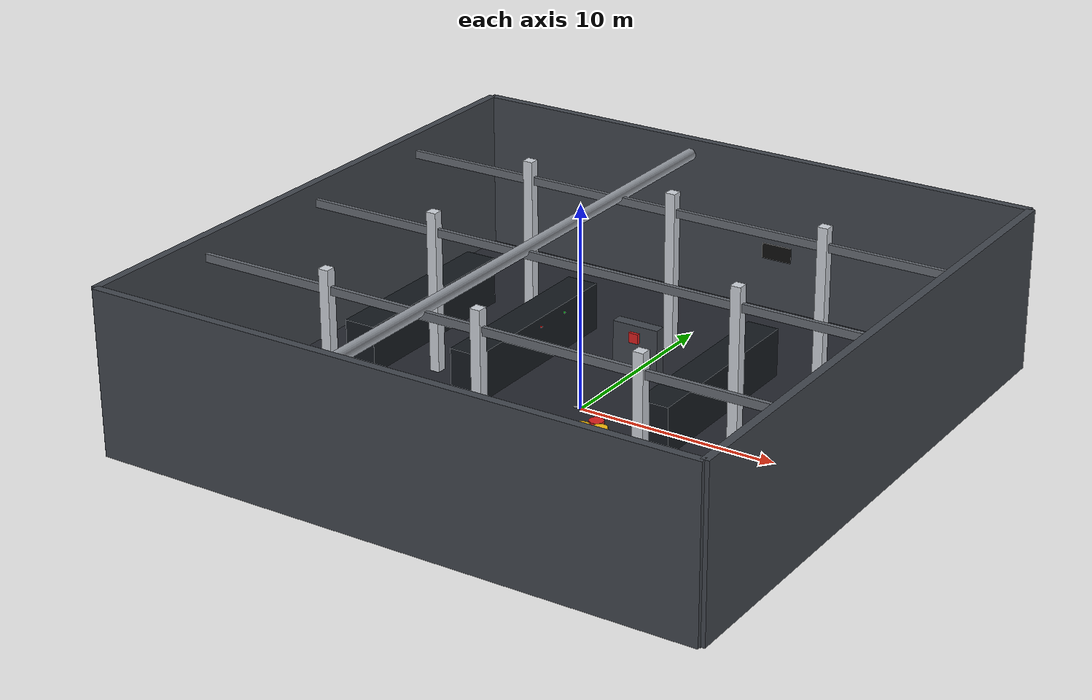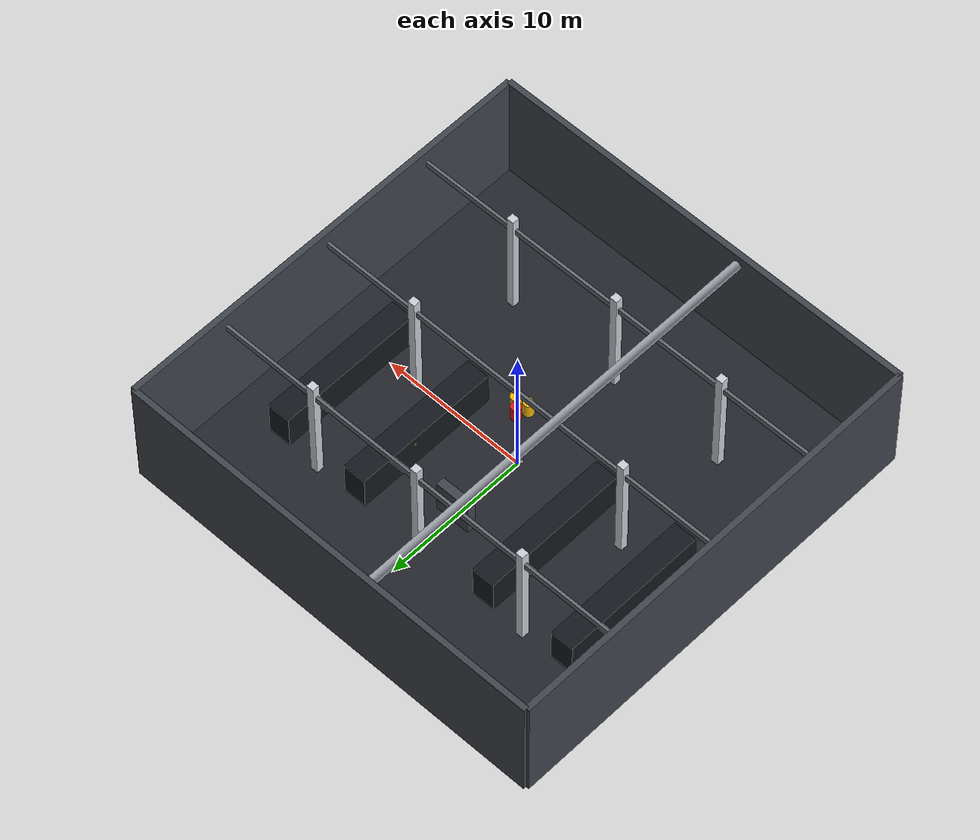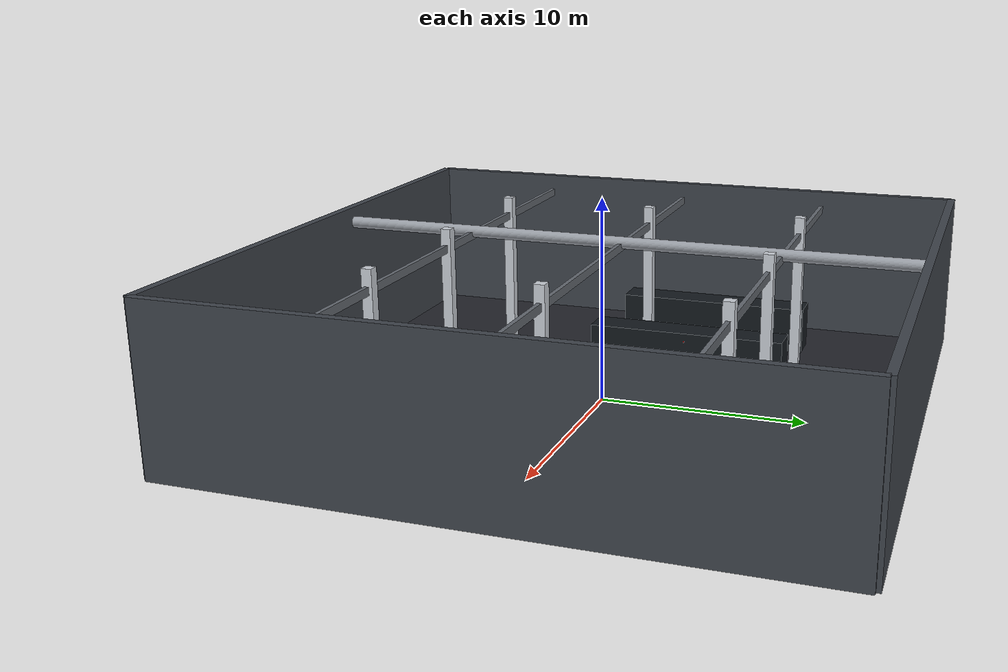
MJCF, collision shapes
<mujoco model="industrial_server_datacenter_warehouse">
  <!-- 1. Include the drone at the top -->
  <include file="x2.xml"/>
  <option timestep="0.005" gravity="0 0 -9.81"/>

  <asset>
    <!-- Darker industrial atmosphere with cool LED accent colors -->
    <texture type="skybox" builtin="gradient" rgb1="0.02 0.03 0.05" rgb2="0.01 0.01 0.02" width="512" height="512"/>
    <texture type="2d" name="floor_grid" builtin="checker" rgb1="0.10 0.11 0.13" rgb2="0.18 0.19 0.22" width="512" height="512"/>
    <material name="floor_mat" texture="floor_grid" texrepeat="20 20" reflectance="0.15"/>
    <material name="wall_mat" rgba="0.25 0.27 0.30 1"/>
    <material name="ceiling_mat" rgba="0.15 0.16 0.18 1"/>
    <material name="pillar_mat" rgba="0.80 0.82 0.85 1"/>
    <material name="server_rack_mat" rgba="0.08 0.10 0.12 1" shininess="0.8"/>
    <material name="steel_truss" rgba="0.40 0.42 0.45 1" shininess="0.5"/>
    <material name="overhead_duct" rgba="0.60 0.62 0.65 1"/>

    <!-- Inspection Hazards, Lights & Accents -->
    <material name="yellow_barrel_mat" rgba="0.95 0.72 0.05 1"/>
    <material name="red_hazard_mat" rgba="0.85 0.12 0.12 1"/>
    <material name="led_green" rgba="0.1 1.0 0.2 1" emission="0.9"/>
    <material name="led_red" rgba="1.0 0.1 0.1 1" emission="0.9"/>
    <material name="crack_mat" rgba="0.05 0.05 0.05 1"/>
  </asset>

  <worldbody>
    <!-- Overhead Industrial / Server Room Lighting -->
    <light pos="0 0 7.5" dir="0 0 -1" diffuse="0.75 0.78 0.85" specular="0.3 0.3 0.3"/>
    <light pos="-6 0 7.5" dir="0 0 -1" diffuse="0.5 0.5 0.5" specular="0.1 0.1 0.1"/>
    <light pos="6 0 7.5" dir="0 0 -1" diffuse="0.5 0.5 0.5" specular="0.1 0.1 0.1"/>

    <!-- Dynamic Hazard Light (Flickering Arc/Spark) -->
    <light name="spark_flash" pos="0 5 2.2" diffuse="1.0 0.3 0.1" specular="1 1 1"/>

    <!-- Floor (15x15m bounds) -->
    <geom name="floor" type="plane" size="15 15 0.1" material="floor_mat"/>

    <!-- 1. Enclosed Room: 4 Outer Walls -->
    <geom name="wall_north" type="box" size="15 0.2 4" pos="0 15 4" material="wall_mat"/>
    <geom name="wall_south" type="box" size="15 0.2 4" pos="0 -15 4" material="wall_mat"/>
    <geom name="wall_east" type="box" size="0.2 15 4" pos="15 0 4" material="wall_mat"/>
    <geom name="wall_west" type="box" size="0.2 15 4" pos="-15 0 4" material="wall_mat"/>

    <!-- Wall Crack Decal -->
    <geom name="wall_crack_north" type="box" size="0.8 0.01 0.4" pos="2 14.8 3" material="crack_mat"/>

    <!-- 2. Ceiling / Roof -->
    <geom name="roof" type="plane" size="15 15 0.1" pos="0 0 8" quat="0 1 0 0" material="ceiling_mat"/>

    <!-- 3. Grid of Vertical Support Pillars -->
    <geom name="pillar_a1" type="box" size="0.25 0.25 4" pos="-8 8 4" material="pillar_mat"/>
    <geom name="pillar_a2" type="box" size="0.25 0.25 4" pos="-8 0 4" material="pillar_mat"/>
    <geom name="pillar_a3" type="box" size="0.25 0.25 4" pos="-8 -8 4" material="pillar_mat"/>
    <geom name="pillar_b1" type="box" size="0.25 0.25 4" pos="0 8 4" material="pillar_mat"/>
    <geom name="pillar_b2" type="box" size="0.25 0.25 4" pos="0 -8 4" material="pillar_mat"/>
    <geom name="pillar_c1" type="box" size="0.25 0.25 4" pos="8 8 4" material="pillar_mat"/>
    <geom name="pillar_c2" type="box" size="0.25 0.25 4" pos="8 0 4" material="pillar_mat"/>
    <geom name="pillar_c3" type="box" size="0.25 0.25 4" pos="8 -8 4" material="pillar_mat"/>

    <!-- 4. Server Rack Aisles with Status LEDs -->
    <geom name="server_row_l1" type="box" size="0.8 5.0 1.2" pos="-11 3 1.2" material="server_rack_mat"/>
    <geom name="server_row_l2" type="box" size="0.8 5.0 1.2" pos="-5 3 1.2" material="server_rack_mat"/>
    <geom name="rack_led_1" type="sphere" size="0.05" pos="-4.1 5.0 2.0" material="led_green"/>
    <geom name="rack_led_2" type="sphere" size="0.05" pos="-4.1 3.0 2.0" material="led_red"/>

    <geom name="server_row_r1" type="box" size="0.8 5.0 1.2" pos="5 3 1.2" material="server_rack_mat"/>
    <geom name="server_row_r2" type="box" size="0.8 5.0 1.2" pos="11 3 1.2" material="server_rack_mat"/>
    <geom name="rack_led_3" type="sphere" size="0.05" pos="4.1 4.0 2.0" material="led_green"/>

    <!-- 5. Overhead Trusses & Cable Trays -->
    <geom name="truss_main_1" type="box" size="15 0.1 0.2" pos="0 8 7.0" material="steel_truss"/>
    <geom name="truss_main_2" type="box" size="15 0.1 0.2" pos="0 0 7.0" material="steel_truss"/>
    <geom name="truss_main_3" type="box" size="15 0.1 0.2" pos="0 -8 7.0" material="steel_truss"/>
    <geom name="air_duct_1" type="cylinder" size="0.3 15" pos="-3 0 7.2" quat="0.707 0.707 0 0" material="overhead_duct"/>

    <!-- 6. Target Inspection Hazard Area -->
    <body name="target_structure" pos="0 5 0">
      <geom name="structure_base" type="box" size="1.2 0.3 1.2" pos="0 0 1.2" material="wall_mat"/>
      <geom name="leak_hazard_box" type="box" size="0.25 0.35 0.25" pos="0 -0.1 1.8" material="red_hazard_mat"/>
      <geom name="spark_emitter" type="sphere" size="0.06" pos="0 -0.1 2.1" material="led_red"/>
    </body>

    <body name="barrel_cluster" pos="2 -3 0">
      <geom name="barrel_1" type="cylinder" size="0.35 0.5" pos="0 0 0.5" material="yellow_barrel_mat"/>
      <geom name="barrel_2" type="cylinder" size="0.35 0.5" pos="0.8 0.2 0.5" material="yellow_barrel_mat"/>
      <geom name="barrel_3" type="cylinder" size="0.35 0.5" pos="0.3 0.7 0.5" material="red_hazard_mat"/>
    </body>
  </worldbody>
</mujoco>

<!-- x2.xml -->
<mujoco model="Skydio X2">
<compiler autolimits="true" assetdir="assets"/>
<option timestep="0.002" density="1.225" viscosity="1.8e-5"/>
<default>
<default class="x2">
  <geom mass="0"/>
  <motor ctrlrange="0 13"/>
  <joint damping="0.05"/>
<mesh scale="0.01 0.01 0.01"/>
<default class="visual">
<geom group="2" type="mesh" contype="0" conaffinity="0"/>
</default>
<default class="collision">
<geom group="3" type="box"/>
<default class="rotor">
<geom type="ellipsoid" size=".13 .13 .01"/>
</default>
</default>
<site group="5"/>
</default>
</default>
<asset>
<texture type="2d" file="X2_lowpoly_texture_SpinningProps_1024.png"/>
<material name="phong3SG" texture="X2_lowpoly_texture_SpinningProps_1024"/>
<material name="invisible" rgba="0 0 0 0"/>
<mesh class="x2" file="X2_lowpoly.obj"/>
</asset>
<worldbody>
<light name="spotlight" mode="targetbodycom" target="x2" pos="0 -1 2"/>
<body name="x2" pos="0 0 0.1" childclass="x2">
<freejoint name="root"/>
<inertial pos="0 0 0" mass="1.5" diaginertia="0.035 0.035 0.06"/>
<camera name="track" pos="-1 0 .5" xyaxes="0 -1 0 1 0 2" mode="trackcom"/>
<camera name="fpv_cam" pos="-0.16 0 0.05" xyaxes="0 1 0 0 0 1" fovy="90"/>
<site name="imu" pos="0 0 .02"/>
<geom material="phong3SG" mesh="X2_lowpoly" class="visual" quat="0 0 1 1"/>
<geom class="collision" size=".06 .027 .02" pos=".04 0 .02"/>
<geom class="collision" size=".06 .027 .02" pos=".04 0 .06"/>
<geom class="collision" size=".05 .027 .02" pos="-.07 0 .065"/>
<geom class="collision" size=".023 .017 .01" pos="-.137 .008 .065" quat="1 0 0 1"/>
<geom name="rotor1" class="rotor" pos="-.14 -.18 .065" mass=".25"/>
<geom name="rotor2" class="rotor" pos="-.14 .18 .065" mass=".25"/>
<geom name="rotor3" class="rotor" pos=".14 .18 .065" mass=".25"/>
<geom name="rotor4" class="rotor" pos=".14 -.18 .065" mass=".25"/>
<geom size=".16 .04 .02" pos="0 0 0.02" type="ellipsoid" mass=".325" class="visual" material="invisible"/>
<site name="thrust1" pos="-.14 -.18 .065"/>
<site name="thrust2" pos="-.14 .18 .065"/>
<site name="thrust3" pos=".14 .18 .065"/>
<site name="thrust4" pos=".14 -.18 .065"/>
<site name="lidar_front_site" pos="0.1 0 0.05" quat="0.7071 0 -0.7071 0"/>
<site name="lidar_down_site" pos="0 0 0" quat="0 0.7071 0.7071 0"/>
</body>
</worldbody>
<actuator>
<motor class="x2" name="thrust1" site="thrust1" gear="0 0 1 0 0 -.0201"/>
<motor class="x2" name="thrust2" site="thrust2" gear="0 0 1 0 0 .0201"/>
<motor class="x2" name="thrust3" site="thrust3" gear="0 0 1 0 0 -.0201"/>
<motor class="x2" name="thrust4" site="thrust4" gear="0 0 1 0 0 .0201"/>
</actuator>
<sensor>
<gyro name="body_gyro" site="imu"/>
<accelerometer name="body_linacc" site="imu"/>
<framequat name="body_quat" objtype="site" objname="imu"/>
<rangefinder name="lidar_front" site="lidar_front_site"/>
<rangefinder name="lidar_down" site="lidar_down_site"/>
</sensor>
<keyframe>
<key name="hover" qpos="0 0 .3 1 0 0 0" ctrl="3.2495625 3.2495625 3.2495625 3.2495625"/>
</keyframe>
</mujoco>
